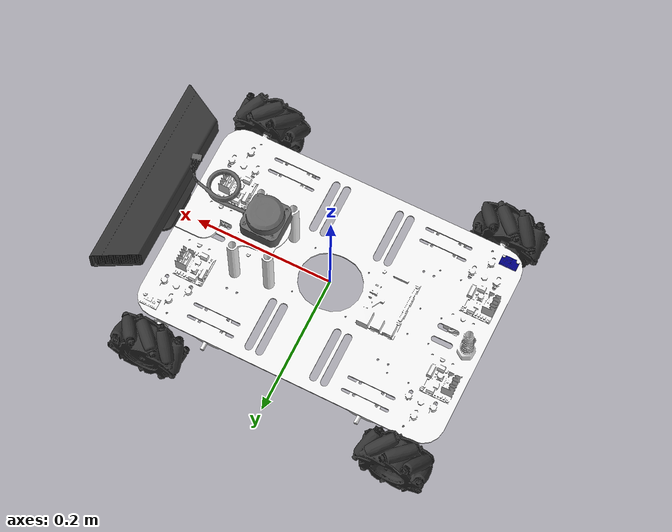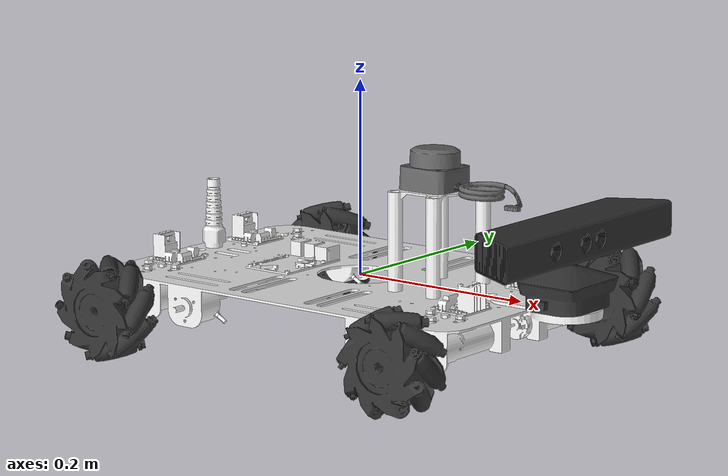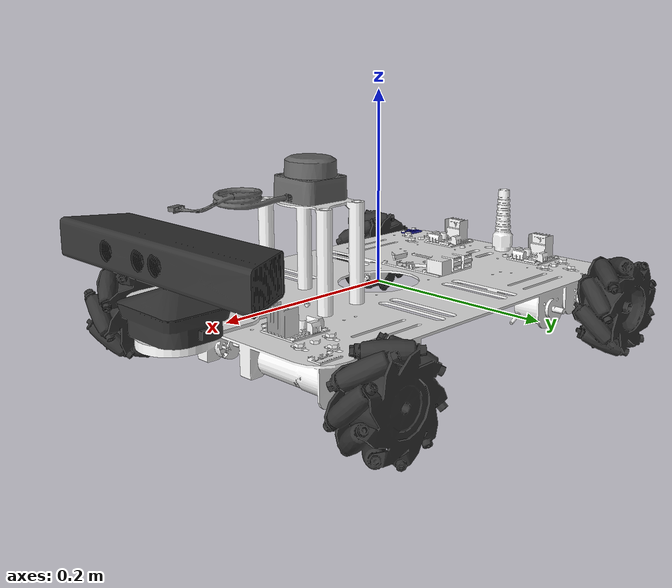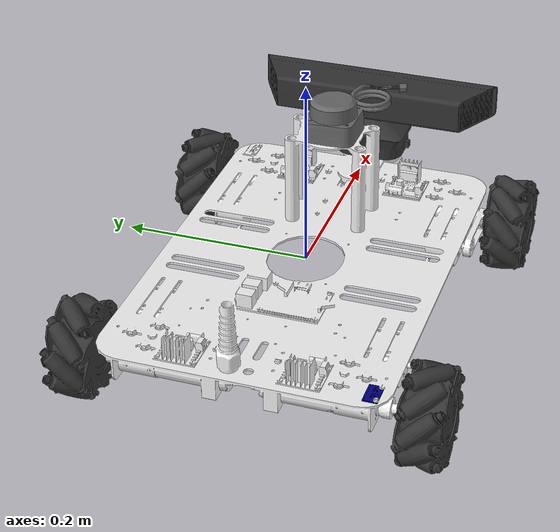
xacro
<?xml version="1.0"?>
<robot name="mecanum" xmlns:xacro="http://www.ros.org/wiki/xacro">

    <xacro:include filename="$(find mecanum_description)/urdf/robot_core.xacro" />

    <xacro:include filename="$(find mecanum_description)/urdf/lidar.xacro" />

    <xacro:include filename="$(find mecanum_description)/urdf/imu.xacro" />

    <xacro:include filename="$(find mecanum_description)/urdf/kinect.xacro" />

    <xacro:include filename="$(find mecanum_description)/urdf/ros2_control.xacro"/>

</robot>

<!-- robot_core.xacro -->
<robot xmlns:xacro="http://www.ros.org/wiki/xacro">

  <!-- Robot base properties -->
  <xacro:property name="wheel_separation_width" value="0.402" />
  <xacro:property name="wheel_separation_length" value="0.363" />
  <xacro:property name="wheel_height" value="-0.0285" />
  <xacro:property name="wheel_radius" value="0.075" />
  <xacro:property name="wheel_width" value="0.037" />

  <!-- Material definitions -->
  <xacro:macro name="material_chassis">
    <material name="chassis_material">
      <color rgba="0.95 0.95 0.95 1" />
    </material>
  </xacro:macro>

  <xacro:macro name="material_wheel">
    <material name="wheel_material">
      <color rgba="0.2 0.2 0.2 1" />
    </material>
  </xacro:macro>

  <!-- base link definition -->
  <link name="base_link">
  </link>
  <!-- chassis link definition -->

  <link name="chassis_link">
    <inertial>
      <origin xyz="0.0099205 -0.00027461 -0.012024" rpy="0 0 0" />
      <mass value="1.1181" />
      <inertia
        ixx="0.00254" ixy="-1.1679E-08" ixz="8.617E-07"
        iyy="0.0054872" iyz="7.5586E-08" izz="0.0077966" />
    </inertial>
    <visual>
      <origin xyz="0 0 0" rpy="0 0 0" />
      <geometry>
        <mesh filename="file://$(find mecanum_description)/meshes/chassis_link.STL" />
      </geometry>
      <xacro:material_chassis />
    </visual>
    <collision>
      <origin xyz="0 0 0" rpy="0 0 0" />
      <geometry>
        <mesh filename="file://$(find mecanum_description)/meshes/chassis_link.STL" />
      </geometry>
    </collision>
  </link>

  <joint name="base_chassis_joint" type="fixed">
    <parent link="base_link" />
    <child link="chassis_link" />
  </joint>

  <!-- Wheel macro -->
  <xacro:macro name="wheel" params="prefix parent x y z rpy axis_xyz">
    <link name="${prefix}_wheel_link">
      <inertial>
        <origin xyz="-4.136E-10 1.1142E-10 -0.018573" rpy="0 0 0" />
        <mass value="0.22689" />
        <inertia
          ixx="6.1082E-05" ixy="-7.4147E-16" ixz="3.0289E-13"
          iyy="6.1082E-05" iyz="1.2454E-12" izz="8.2539E-05" />
      </inertial>
      <visual>
        <origin xyz="0 0 0" rpy="0 0 0" />
        <geometry>
          <mesh filename="file://$(find mecanum_description)//meshes/${prefix}_wheel_link.STL" />
        </geometry>
        <xacro:material_wheel />
      </visual>
      <collision>
        <origin xyz="0 0 0" rpy="0 0 0" />
        <geometry>
          <mesh filename="file://$(find mecanum_description)/meshes/${prefix}_wheel_link.STL" />
        </geometry>
      </collision>
    </link>

    <joint name="chassis_${prefix}_wheel_joint" type="continuous">
      <origin xyz="${x} ${y} ${z}" rpy="${rpy}" />
      <parent link="${parent}" />
      <child link="${prefix}_wheel_link" />
      <axis xyz="${axis_xyz}" />
    </joint>
  </xacro:macro>

  <!-- Instantiate all four wheels -->
  <xacro:macro name="robot_wheels" params="parent">
    <xacro:wheel prefix="fr" parent="${parent}"
      x="0.18096" y="-0.20094" z="${wheel_height}"
      rpy="1.5708 0 0" axis_xyz="0 0 1" />

    <xacro:wheel prefix="fl" parent="${parent}"
      x="0.18096" y="0.20096" z="${wheel_height}"
      rpy="-1.5708 0 0" axis_xyz="0 0 -1" />

    <xacro:wheel prefix="rr" parent="${parent}"
      x="-0.182038628611086" y="-0.200941316659697" z="${wheel_height}"
      rpy="1.5707963267949 0 0" axis_xyz="0 0 -1" />

    <xacro:wheel prefix="rl" parent="${parent}"
      x="-0.182038628611087" y="0.155958683340303" z="${wheel_height}"
      rpy="1.5707963267949 0 0" axis_xyz="0 0 1" />
  </xacro:macro>

  <xacro:robot_wheels parent="chassis_link" />

</robot>

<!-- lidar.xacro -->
<robot xmlns:xacro="http://www.ros.org/wiki/xacro">

    <!-- LiDAR properties -->
    <xacro:property name="lidar_mass" value="0.039373" />

    <!-- LiDAR material -->
    <xacro:macro name="material_lidar">
        <material name="lidar_material">
            <color rgba="0.4 0.4 0.4 1" />
        </material>
    </xacro:macro>

    <xacro:macro name="material_lidar">
        <material name="lidar_material">
            <color rgba="0.4 0.4 0.4 1" />
        </material>
    </xacro:macro>

    <!-- LiDAR URDF macro -->
    <xacro:macro name="lidar_sensor_urdf" params="parent x y z rpy">
        <link name="lidar_link">
            <inertial>
                <origin xyz="-0.012565 0.003305 -0.017724" rpy="0 0 0" />
                <mass value="${lidar_mass}" />
                <inertia
                    ixx="1.2413E-05" ixy="4.7165E-07" ixz="3.3538E-08"
                    iyy="1.293E-05" iyz="-2.9443E-07" izz="2.3169E-05" />
            </inertial>
            <visual>
                <origin xyz="0 0 0" rpy="0 0 0" />
                <geometry>
                    <mesh filename="file://$(find mecanum_description)/meshes/lidar_link.STL" />
                </geometry>
                <xacro:material_lidar />
            </visual>
            <collision>
                <origin xyz="0 0 0" rpy="0 0 0" />
                <geometry>
                    <mesh filename="file://$(find mecanum_description)/meshes/lidar_link.STL" />
                </geometry>
            </collision>
        </link>

        <joint name="chassis_lidar_joint" type="fixed">
            <origin xyz="${x} ${y} ${z}" rpy="${rpy}" />
            <parent link="${parent}" />
            <child link="lidar_link" />
        </joint>

    </xacro:macro>

    <!-- LiDAR Gazebo macro -->
    <xacro:macro name="lidar_sensor_gazebo">
        <!-- Gazebo plugin for LiDAR (optional) -->
        <gazebo reference="lidar_link">
            <sensor type="ray" name="lidar_sensor">
                <pose>0 0 0 0 0 0</pose>
                <visualize>true</visualize>
                <update_rate>10</update_rate>
                <ray>
                    <scan>
                        <horizontal>
                            <samples>720</samples>
                            <resolution>1</resolution>
                            <min_angle>-3.14</min_angle>
                            <max_angle>3.14</max_angle>
                        </horizontal>
                    </scan>
                    <range>
                        <min>0.10</min>
                        <max>30.0</max>
                        <resolution>0.01</resolution>
                    </range>
                    <noise>
                        <type>gaussian</type>
                        <mean>0.0</mean>
                        <stddev>0.01</stddev>
                    </noise>
                </ray>
                <plugin name="gazebo_ros_lidar_controller" filename="libgazebo_ros_laser.so">
                    <ros>
                        <arguement>~/out:=scan</arguement>
                    </ros>
                    <output_type>sensor_msgs/LaserScan</output_type>
                    <frameName>lidar_link</frameName>
                </plugin>
            </sensor>
        </gazebo>

    </xacro:macro>

    <!-- LiDAR URDF -->
    <xacro:lidar_sensor_urdf parent="chassis_link"
        x="0.094461" y="0" z="0.13058"
        rpy="0 0 3.1415" />

    <!-- LiDAR Gazebo -->
    <!-- uncomment below if you want to use gazebo -->

</robot>

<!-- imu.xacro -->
<robot xmlns:xacro="http://www.ros.org/wiki/xacro">

    <!-- IMU properties -->
    <xacro:property name="imu_mass" value="0.001" />

    <!-- IMU material -->
    <xacro:macro name="material_imu">
        <material name="imu_material">
            <color rgba="0 0 0.5 1" />
        </material>
    </xacro:macro>

    <!-- IMU URDF macro -->
    <xacro:macro name="imu_sensor_urdf" params="parent x y z rpy">
        <link name="imu_link">
            <inertial>
                <origin xyz="0 0 0" rpy="0 0 0" />
                <mass value="${imu_mass}" />
                <inertia
                    ixx="1.0E-06" ixy="0" ixz="0"
                    iyy="1.0E-06" iyz="0" izz="1.0E-06" />
            </inertial>
            <visual>
                <origin xyz="0 0 0" rpy="0 0 0" />
                <geometry>
                    <mesh filename="file://$(find mecanum_description)/meshes/imu_link.STL" />
                </geometry>
                <xacro:material_imu />
            </visual>
            <collision>
                <origin xyz="0 0 0" rpy="0 0 0" />
                <geometry>
                    <mesh filename="file://$(find mecanum_description)/meshes/imu_link.STL" />
                </geometry>
            </collision>
        </link>

        <joint name="chassis_imu_joint" type="fixed">
            <origin xyz="${x} ${y} ${z}" rpy="${rpy}" />
            <parent link="${parent}" />
            <child link="imu_link" />
        </joint>
    </xacro:macro>

    <xacro:macro name="imu_sensor_gazebo">
        <!-- Gazebo plugin for IMU (optional) -->
        <gazebo reference="imu_link">
            <sensor name="imu_sensor" type="imu">
                <plugin filename="libgazebo_ros_imu_sensor.so" name="imu_plugin">
                    <topicName>imu</topicName>
                    <bodyName>imu_link</bodyName>
                    <updateRateHZ>50.0</updateRateHZ>
                    <gaussianNoise>0.0</gaussianNoise>
                    <xyzOffset>0 0 0</xyzOffset>
                    <rpyOffset>0 0 0</rpyOffset>
                    <frameName>imu_link</frameName>
                    <initialOrientationAsReference>false</initialOrientationAsReference>
                </plugin>
                <always_on>true</always_on>
                <update_rate>50</update_rate>
                <visualize>true</visualize>
                <imu>
                    <angular_velocity>
                        <x>
                            <noise type="gaussian">
                                <mean>0.0</mean>
                                <stddev>2e-4</stddev>
                            </noise>
                        </x>
                        <y>
                            <noise type="gaussian">
                                <mean>0.0</mean>
                                <stddev>2e-4</stddev>
                            </noise>
                        </y>
                        <z>
                            <noise type="gaussian">
                                <mean>0.0</mean>
                                <stddev>2e-4</stddev>
                            </noise>
                        </z>
                    </angular_velocity>
                    <linear_acceleration>
                        <x>
                            <noise type="gaussian">
                                <mean>0.0</mean>
                                <stddev>1.7e-2</stddev>
                            </noise>
                        </x>
                        <y>
                            <noise type="gaussian">
                                <mean>0.0</mean>
                                <stddev>1.7e-2</stddev>
                            </noise>
                        </y>
                        <z>
                            <noise type="gaussian">
                                <mean>0.0</mean>
                                <stddev>1.7e-2</stddev>
                            </noise>
                        </z>
                    </linear_acceleration>
                </imu>
            </sensor>
        </gazebo>
    </xacro:macro>

    <!-- IMU URDF -->
    <xacro:imu_sensor_urdf parent="base_link"
        x="-0.203060931806989" y="-0.1330136198556" z="0.00262"
        rpy="0 0 -1.5707963267949" />
    <!-- IMU Gazebo -->
    <!-- Uncomment below if you want to use Gazebo -->

</robot>

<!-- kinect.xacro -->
<robot xmlns:xacro="http://www.ros.org/wiki/xacro">

    <!-- Kinect properties -->
    <xacro:property name="kinect_mass" value="0.71239" />

    <!-- Kinect materials -->

    <xacro:macro name="material_kinect">
        <material name="kinect_material">
            <color rgba="0.2 0.2 0.2 1" />
        </material>
    </xacro:macro>

    <!-- Kinect camera macro -->
    <xacro:macro name="kinect_camera_urdf" params="parent x y z rpy">

        <!-- Main Kinect link -->
        <link name="kinect_link">
            <inertial>
                <origin xyz="-0.0010838 0.00014948 0.04162" rpy="0 0 0" />
                <mass value="${kinect_mass}" />
                <inertia
                    ixx="0.0028732" ixy="-2.5663E-06" ixz="1.4819E-07"
                    iyy="0.00028624" iyz="-3.449E-08" izz="0.0030133" />
            </inertial>
            <visual>
                <origin xyz="0 0 0" rpy="0 0 0" />
                <geometry>
                    <mesh filename="file://$(find mecanum_description)/meshes/kinect_link.STL" />
                </geometry>
                <xacro:material_kinect />
            </visual>
            <collision>
                <origin xyz="0 0 0" rpy="0 0 0" />
                <geometry>
                    <mesh filename="file://$(find mecanum_description)/meshes/kinect_link.STL" />
                </geometry>
            </collision>
        </link>

        <joint name="chassis_kinect_joint" type="fixed">
            <origin xyz="${x} ${y} ${z}" rpy="${rpy}" />
            <parent link="${parent}" />
            <child link="kinect_link" />
        </joint>

        <!-- camera links -->

        <!-- RGB camera link -->
        <link name="kinect_rgb_link">
        </link>

        <joint name="kinect_kinect_rgb_joint" type="fixed">
            <origin xyz="0.0215280934829362 -0.0099999999999999 0.0535" rpy="0 0 0" />
            <parent link="kinect_link" />
            <child link="kinect_rgb_link" />
        </joint>

        <!-- Depth camera link -->
        <link name="kinect_depth_link">
        </link>

        <joint name="kinect_kinect_depth_joint" type="fixed">
            <origin xyz="0.0215280934829362 0.0150000000000001 0.0535" rpy="0 0 0" />
            <parent link="kinect_link" />
            <child link="kinect_depth_link" />
        </joint>

        <!-- Optical Links -->

        <!-- RGB optical frame link -->
        <link name="kinect_rgb_optical_link"></link>

        <joint name="kinect_rgb_optical_joint" type="fixed">
            <origin xyz="0 0 0" rpy="${-pi/2} 0 ${-pi/2}" />
            <parent link="kinect_rgb_link" />
            <child link="kinect_rgb_optical_link" />
        </joint>

        <!-- Depth optical frame link -->
        <link name="kinect_depth_optical_link"></link>

        <joint name="kinect_depth_optical_joint" type="fixed">
            <origin xyz="0 0 0" rpy="${-pi/2} 0 ${-pi/2}" />
            <parent link="kinect_depth_link" />
            <child link="kinect_depth_optical_link" />
        </joint>

    </xacro:macro>

    <xacro:macro name="kinect_camera_gazebo">
        <!-- Gazebo plugins for Kinect (optional) -->
        <gazebo reference="kinect_rgb_link">
            <sensor type="camera" name="kinect_rgb_camera">
                <update_rate>30.0</update_rate>
                <camera name="kinect_rgb">
                    <horizontal_fov>1.3962634</horizontal_fov>
                    <image>
                        <width>640</width>
                        <height>480</height>
                        <format>R8G8B8</format>
                    </image>
                    <clip>
                        <near>0.02</near>
                        <far>300</far>
                    </clip>
                    <noise>
                        <type>gaussian</type>
                        <mean>0.0</mean>
                        <stddev>0.007</stddev>
                    </noise>
                </camera>
                <plugin name="kinect_rgb_camera_controller" filename="libgazebo_ros_camera.so">
                    <alwaysOn>true</alwaysOn>
                    <updateRate>0.0</updateRate>
                    <cameraName>kinect_rgb</cameraName>
                    <imageTopicName>/kinect/rgb/image_raw</imageTopicName>
                    <cameraInfoTopicName>/kinect/rgb/camera_info</cameraInfoTopicName>
                    <frameName>kinect_rgb_optical_link</frameName>
                    <hackBaseline>0.07</hackBaseline>
                    <distortionK1>0.0</distortionK1>
                    <distortionK2>0.0</distortionK2>
                    <distortionK3>0.0</distortionK3>
                    <distortionT1>0.0</distortionT1>
                    <distortionT2>0.0</distortionT2>
                </plugin>
            </sensor>
        </gazebo>

        <gazebo reference="kinect_depth_link">
            <sensor type="depth" name="kinect_depth_camera">
                <update_rate>30.0</update_rate>
                <camera name="kinect_depth">
                    <horizontal_fov>1.3962634</horizontal_fov>
                    <image>
                        <width>640</width>
                        <height>480</height>
                    </image>
                    <clip>
                        <near>0.4</near>
                        <far>5.0</far>
                    </clip>
                </camera>
                <plugin name="kinect_depth_camera_controller"
                    filename="libgazebo_ros_openni_kinect.so">
                    <baseline>0.2</baseline>
                    <alwaysOn>true</alwaysOn>
                    <updateRate>30.0</updateRate>
                    <cameraName>kinect_depth</cameraName>
                    <imageTopicName>/kinect/depth/image_raw</imageTopicName>
                    <cameraInfoTopicName>/kinect/depth/camera_info</cameraInfoTopicName>
                    <depthImageTopicName>/kinect/depth/image_raw</depthImageTopicName>
                    <depthImageCameraInfoTopicName>/kinect/depth/camera_info</depthImageCameraInfoTopicName>
                    <pointCloudTopicName>/kinect/depth/points</pointCloudTopicName>
                    <frameName>kinect_depth_optical_link</frameName>
                    <pointCloudCutoff>0.5</pointCloudCutoff>
                    <pointCloudCutoffMax>3.0</pointCloudCutoffMax>
                    <distortionK1>0</distortionK1>
                    <distortionK2>0</distortionK2>
                    <distortionK3>0</distortionK3>
                    <distortionT1>0</distortionT1>
                    <distortionT2>0</distortionT2>
                    <CxPrime>0</CxPrime>
                    <Cx>0</Cx>
                    <Cy>0</Cy>
                    <focalLength>0</focalLength>
                    <hackBaseline>0</hackBaseline>
                </plugin>
            </sensor>
        </gazebo>

    </xacro:macro>

    <!-- kinect URDF -->
    <xacro:kinect_camera_urdf parent="chassis_link"
        x="0.25446" y="0" z="0.017648"
        rpy="0 0 0" />

    <!-- kinect Gazebo -->
    <!-- Uncomment below if you want to use Gazebo -->
    <xacro:kinect_camera_gazebo />
</robot>
